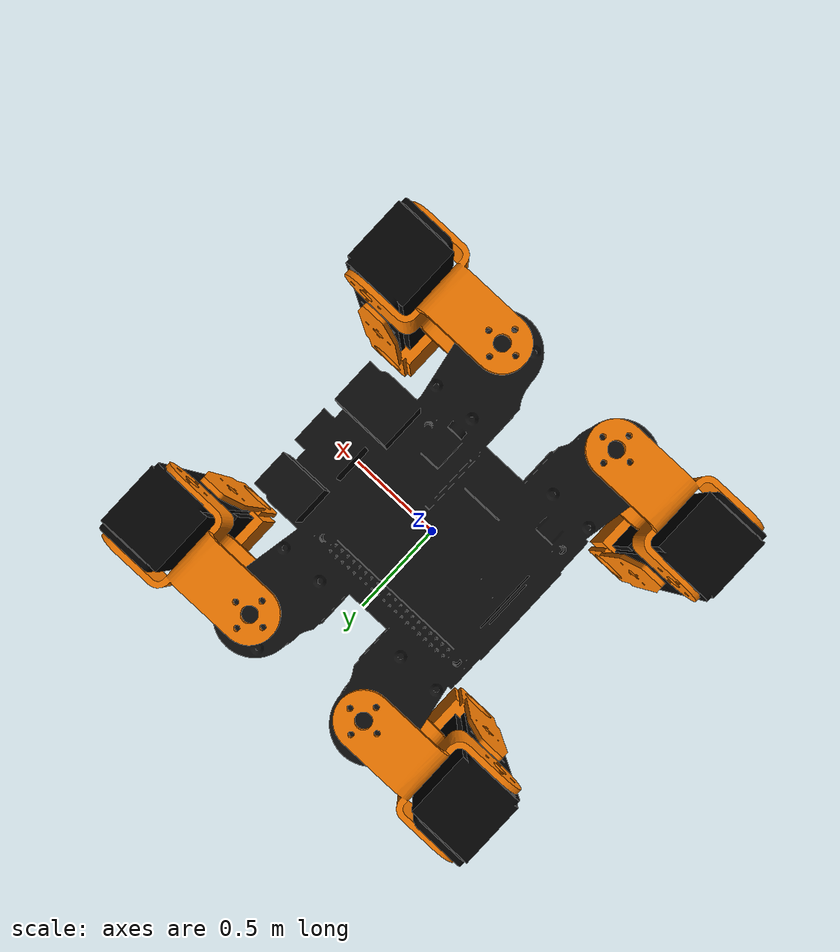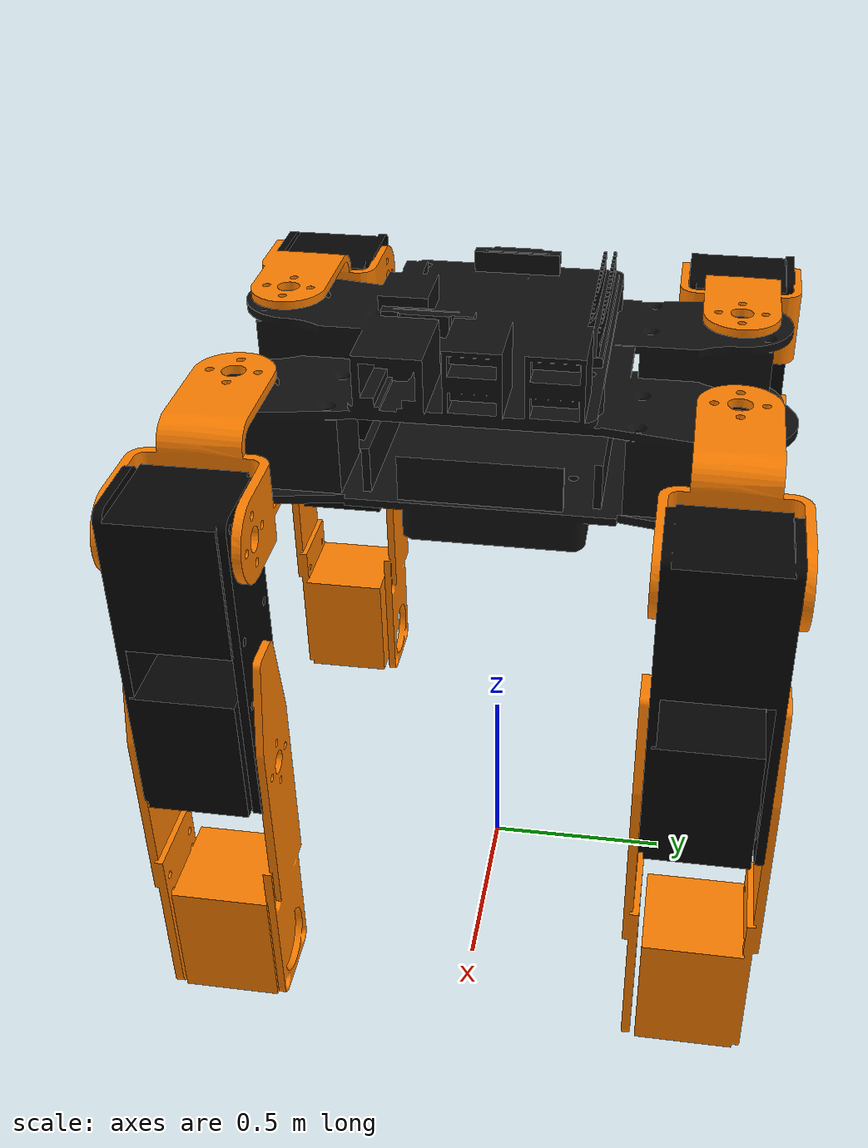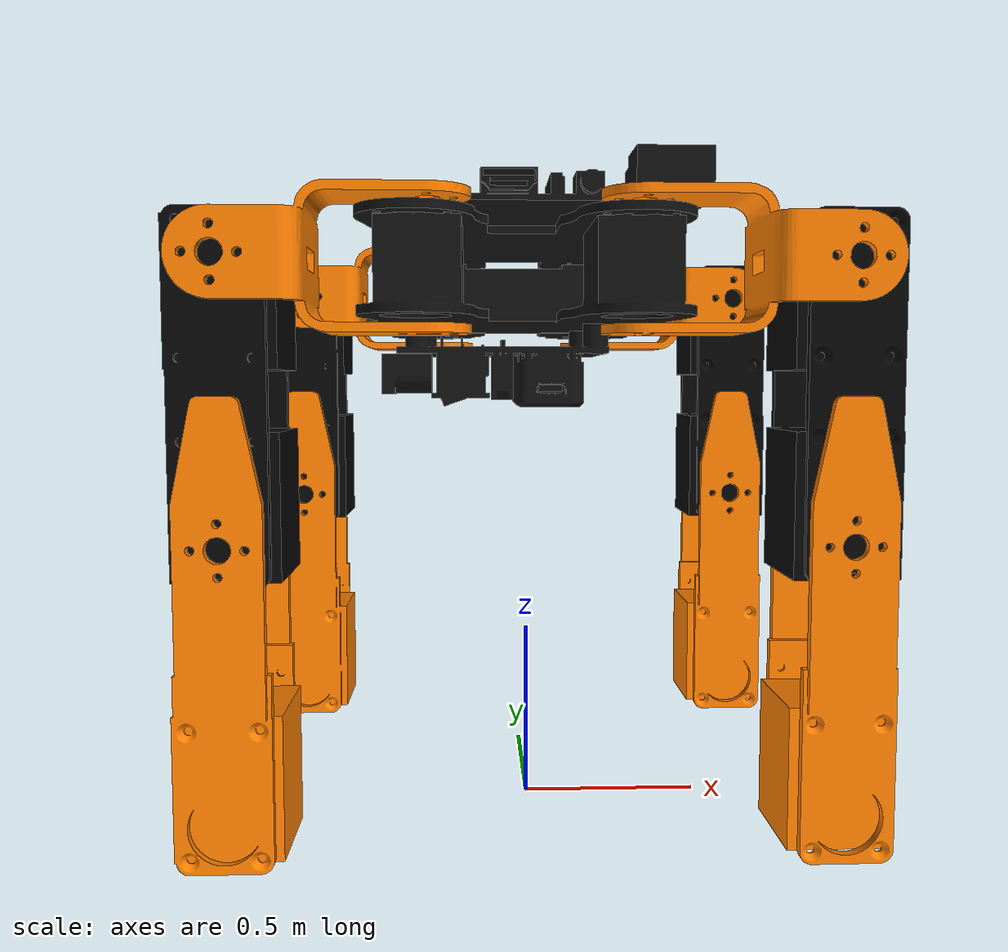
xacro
<?xml version="1.0" ?>
<robot name="ads-mt" xmlns:xacro="http://www.ros.org/wiki/xacro">

    <xacro:include filename="$(find adsmt_description)/adsmt_description/urdf/adsmt.gazebo" />

    <link name = "base_footprint">
        <!-- Nth in here -->
    </link>
    <joint name = "body_link_joint" type='fixed'>
        <origin xyz="0 0.00 1.5" rpy="0 0 0"/>
        <parent link="base_footprint"/>
        <child link="body"/>
    </joint>

    <material name="yellow">
        <color rgba="1 0.5 0 1"/>
    </material>

    <material name="black">
        <color rgba="0.02 0.02 0.02 1"/>
    </material>

    <material name="grey">
        <color rgba="0.06 0.06 0.06 1"/>
    </material>

    <!-- Base Link -->
    <link name="body">
        <visual>
            <geometry>
                <mesh filename="$(find adsmt_description)/adsmt_description/urdf/designs/body.stl" scale=" 0.01 0.01 0.01"/>
            </geometry>
            <material name='grey'/>
        </visual>
        <collision>
            <density>1060.0</density>
           <origin xyz="0 0 0"/>
           <geometry>
              <mesh filename="$(find adsmt_description)/adsmt_description/urdf/designs/body.stl" scale=" 0.01 0.01 0.01"/>
           </geometry>
        </collision>
        <inertial>
            <mass value="0.29"/>
            <origin xyz="0 0 0"/>
            <inertia ixx="0.000193" ixy="0.0" ixz="0.0" iyy="0.000694" iyz="0.0" izz="0.000529"/>
        </inertial>
    </link>

    <!-- Leg 1 -->
    <!-- Joints and Links -->
    <joint name="joint_1" type="revolute">
        <parent link="body"/>
        <child link="joint_1_link"/>
        <origin xyz="-0.255 -0.60 0.0" rpy="0 0 -1.5708"/>
        <axis xyz="0 0 1"/>
        <limit lower="-3.1415" upper="3.1415" effort="10" velocity="1.0"/>
    </joint>
    <link name="joint_1_link">
        <inertial>
            <mass value="0.018"/>
            <origin xyz="0 0 0"/>
            <inertia ixx="0.000008268" ixy="0.0" ixz="0.0" iyy="0.000008268" iyz="0.0" izz="0.000003468"/>
        </inertial>
        <visual>
            <geometry>
                <mesh filename="$(find adsmt_description)/adsmt_description/urdf/designs/double_u.stl" scale=" 0.01 0.01 0.01"/>
            </geometry>
            <material name='yellow'/>
        </visual>
        <collision>
            <geometry>
                <mesh filename="$(find adsmt_description)/adsmt_description/urdf/designs/double_u.stl" scale=" 0.01 0.01 0.01"/>

            </geometry>
        </collision>
    </link>

    <!-- Thigh 1 -->
    <joint name="joint_1_1" type="revolute">
        <parent link="joint_1_link"/>
        <child link="joint_1_thigh"/>
        <origin xyz="-0.0 -0.46 -0.0" rpy="-1.5708 0 0"/>
        <axis xyz="1 0 0"/>
        <limit lower="-3.1415" upper="3.1415" effort="10" velocity="1.0"/>
    </joint>
    <link name="joint_1_thigh">
        <inertial>
            <mass value="0.06"/>
            <origin xyz="0 0 0"/>
            <inertia ixx="0.0000193" ixy="0.0" ixz="0.0" iyy="0.0000202" iyz="0.0" izz="0.00000331"/>
        </inertial>
        <visual>

            <geometry>
                <mesh filename="$(find adsmt_description)/adsmt_description/urdf/designs/thigh.stl" scale=" 0.01 0.01 0.01"/>
            </geometry>
            <material name='black'></material>
        </visual>
        <collision>
            <origin xyz="0 0 0"/>
            <geometry>
                <mesh filename="$(find adsmt_description)/adsmt_description/urdf/designs/thigh.stl" scale=" 0.01 0.01 0.01"/>

            </geometry>
        </collision>
    </link>

    <!-- Shin 1 -->
    <joint name="joint_1_1_1" type="revolute">
        <parent link="joint_1_thigh"/>
        <child link="joint_1_shin"/>
        <origin xyz="-0.0 0.65 0.0" rpy="3.1415 0 0"/>
        <axis xyz="1 0 0"/>
        <limit lower="-3.1415" upper="3.1415" effort="10" velocity="1.0"/>
    </joint>
    <link name="joint_1_shin">
        <inertial>
            <mass value="0.06"/>
            <origin xyz="0 0 0"/>
            <inertia ixx="0.00003064" ixy="0.0" ixz="0" iyy="0.00003232" iyz="0.0" izz="0.0000041"/>

        </inertial>
        <visual>
            <geometry>
                <mesh filename="$(find adsmt_description)/adsmt_description/urdf/designs/shin.stl" scale=" 0.01 0.01 0.01"/>
            </geometry>
            <material name='yellow'></material>
        </visual>
        <collision>
            <geometry>
                <mesh filename="$(find adsmt_description)/adsmt_description/urdf/designs/shin.stl" scale=" 0.01 0.01 0.01"/>
            </geometry>
        </collision>
    </link>

    <!-- /Leg 1 -->

    <!-- Leg 2 -->
    <joint name="joint_2" type="revolute">
        <parent link="body"/>
        <child link="joint_2_link"/>
        <origin xyz="-0.255 0.6 0.0" rpy="0 0 -1.5708"/>
        <axis xyz="0 0 1"/>
        <limit lower="-3.1415" upper="3.1415" effort="10" velocity="1.0"/>
    </joint>
    <link name="joint_2_link">
        <inertial>
            <mass value="0.018"/>
            <origin xyz="0 0 0"/>
            <inertia ixx="0.000133" ixy="0.0" ixz="0.0" iyy="0.000133" iyz="0.0" izz="0.0000558"/>

        </inertial>
        <visual>
            <geometry>
                <mesh filename="$(find adsmt_description)/adsmt_description/urdf/designs/double_u.stl" scale=" 0.01 0.01 0.01"/>
            </geometry>
            <material name='yellow'/>
        </visual>

        <collision>
            <geometry>
                <mesh filename="$(find adsmt_description)/adsmt_description/urdf/designs/double_u.stl" scale=" 0.01 0.01 0.01"/>
            </geometry>
        </collision>

    </link>

    <!-- Thigh 2 -->
    <joint name="joint_2_1" type="revolute">
        <parent link="joint_2_link"/>
        <child link="joint_2_thigh"/>
        <origin xyz="-0.0 -0.46 0.0" rpy="-1.5708 0 0"/>
        <axis xyz="1 0 0"/>
        <limit lower="-3.1415" upper="3.1415" effort="10" velocity="1.0"/>
    </joint>
    <link name="joint_2_thigh">
        <inertial>
            <mass value="0.06"/>
            <origin xyz="0 0 0"/>
            <inertia ixx="0.0000193" ixy="0.0" ixz="0.0" iyy="0.0000202" iyz="0.0" izz="0.00000331"/>
        </inertial>
        <visual>
            <geometry>
                <mesh filename="$(find adsmt_description)/adsmt_description/urdf/designs/thigh.stl" scale=" 0.01 0.01 0.01"/>
            </geometry>
            <material name='black'></material>
        </visual>
        <collision>
            <geometry>
                <mesh filename="$(find adsmt_description)/adsmt_description/urdf/designs/thigh.stl" scale=" 0.01 0.01 0.01"/>
            </geometry>
        </collision>
    </link>

    <!-- Shin 2 -->
    <joint name="joint_2_1_1" type="revolute">
        <parent link="joint_2_thigh"/>
        <child link="joint_2_shin"/>
        <origin xyz="-0.0 0.65 0.0" rpy="3.1415 0 0"/>
        <axis xyz="1 0 0"/>
        <limit lower="-3.1415" upper="3.1415" effort="10" velocity="1.0"/>
    </joint>
    <link name="joint_2_shin">
        <inertial>
            <mass value="0.06"/>
            <origin xyz="0 0 0"/>
            <inertia ixx="0.00003064" ixy="0.0" ixz="0" iyy="0.00003232" iyz="0.0" izz="0.0000041"/>

        </inertial>
        <visual>
            <geometry>
                <mesh filename="$(find adsmt_description)/adsmt_description/urdf/designs/shin.stl" scale=" 0.01 0.01 0.01"/>
            </geometry>
            <material name='yellow'></material>
        </visual>
        <collision>
            <geometry>
                <mesh filename="$(find adsmt_description)/adsmt_description/urdf/designs/shin.stl" scale=" 0.01 0.01 0.01"/>
            </geometry>
        </collision>
    </link>
    <!-- /Leg 2-->

    <!-- Leg 3 -->
    <joint name="joint_3" type="revolute">
        <parent link="body"/>
        <child link="joint_3_link"/>
        <origin xyz="0.25 -0.60 -0.0" rpy="0 0 1.5708"/>
        <axis xyz="0 0 1"/>
        <limit lower="-3.1415" upper="3.1415" effort="10" velocity="1.0"/>
    </joint>
    <link name="joint_3_link">
        <inertial>
            <mass value="0.018"/>
            <origin xyz="0 0 0"/>
            <inertia ixx="0.000133" ixy="0.0" ixz="0.0" iyy="0.000133" iyz="0.0" izz="0.0000558"/>
        </inertial>
        <visual>
            <geometry>
                <mesh filename="$(find adsmt_description)/adsmt_description/urdf/designs/double_u.stl" scale=" 0.01 0.01 0.01"/>
            </geometry>
            <material name='yellow'></material>
        </visual>
        <collision>
            <geometry>
                <mesh filename="$(find adsmt_description)/adsmt_description/urdf/designs/double_u.stl" scale=" 0.01 0.01 0.01"/>
            </geometry>
        </collision>

    </link>

    <!-- Thigh 3 -->
    <joint name="joint_3_1" type="revolute">
        <parent link="joint_3_link"/>
        <child link="joint_3_thigh"/>
        <origin xyz="-0.00 -0.46 -0.00" rpy="-1.5708 0 0"/>
        <axis xyz="1 0 0"/>
        <limit lower="-3.1415" upper="3.1415" effort="10" velocity="1.0"/>
    </joint>
    <link name="joint_3_thigh">
        <inertial>
            <mass value="0.06"/>
            <origin xyz="0 0 0"/>
            <inertia ixx="0.0000193" ixy="0.0" ixz="0.0" iyy="0.0000202" iyz="0.0" izz="0.00000331"/>
        </inertial>
        <visual>
            <geometry>
                <mesh filename="$(find adsmt_description)/adsmt_description/urdf/designs/thigh.stl" scale=" 0.01 0.01 0.01"/>
            </geometry>
            <material name='black'></material>
        </visual>
        <collision>
            <geometry>
                <mesh filename="$(find adsmt_description)/adsmt_description/urdf/designs/thigh.stl" scale=" 0.01 0.01 0.01"/>
            </geometry>
        </collision>
    </link>

    <!-- Shin 3 -->
    <joint name="joint_3_1_1" type="revolute">
        <parent link="joint_3_thigh"/>
        <child link="joint_3_shin"/>
        <origin xyz="-0.0 0.65 -0.00" rpy="3.1415 0 0"/>
        <axis xyz="1 0 0"/>
        <limit lower="-3.1415" upper="3.1415" effort="10" velocity="1.0"/>
    </joint>
    <link name="joint_3_shin">
        <inertial>
            <mass value="0.06"/>
            <origin xyz="0 0 0"/>
            <inertia ixx="0.00003064" ixy="0.0" ixz="0" iyy="0.00003232" iyz="0.0" izz="0.0000041"/>
        </inertial>
        <visual>
            <geometry>
                <mesh filename="$(find adsmt_description)/adsmt_description/urdf/designs/shin.stl" scale=" 0.01 0.01 0.01"/>
            </geometry>
            <material name='yellow'></material>
        </visual>
        <collision>
            <geometry>
                <mesh filename="$(find adsmt_description)/adsmt_description/urdf/designs/shin.stl" scale=" 0.01 0.01 0.01"/>
            </geometry>
        </collision>
    </link>
    <!-- /Leg 3-->

    <!-- Leg 4 -->
    <joint name="joint_4" type="revolute">
        <parent link="body"/>
        <child link="joint_4_link"/>
        <origin xyz="0.250 0.6 0.0" rpy="0 0 1.5708"/>
        <axis xyz="0 0 1"/>
        <limit lower="-3.1415" upper="3.1415" effort="10" velocity="1.0"/>
    </joint>
    <link name="joint_4_link">
        <inertial>
            <mass value="0.018"/>
            <origin xyz="0 0 0"/>
            <inertia ixx="0.000133" ixy="0.0" ixz="0.0" iyy="0.000133" iyz="0.0" izz="0.0000558"/>
        </inertial>
        <visual>
            <geometry>
                <mesh filename="$(find adsmt_description)/adsmt_description/urdf/designs/double_u.stl" scale=" 0.01 0.01 0.01"/>
            </geometry>
            <material name='yellow'></material>
        </visual>
        <collision>
            <geometry>
                <mesh filename="$(find adsmt_description)/adsmt_description/urdf/designs/double_u.stl" scale=" 0.01 0.01 0.01"/>
            </geometry>
        </collision>
    </link>

    <!-- Thigh 4 -->
    <joint name="joint_4_1" type="revolute">
        <parent link="joint_4_link"/>
        <child link="joint_4_thigh"/>
        <origin xyz="-0.0 -0.46 0.0" rpy="-1.5708 0 0"/>
        <axis xyz="1 0 0"/>
        <limit lower="-3.1415" upper="3.1415" effort="10" velocity="1.0"/>
    </joint>
    <link name="joint_4_thigh">
        <inertial>
            <mass value="0.06"/>
            <origin xyz="0 0 0"/>
            <inertia ixx="0.0000193" ixy="0.0" ixz="0.0" iyy="0.0000202" iyz="0.0" izz="0.00000331"/>
        </inertial>
        <visual>
            <geometry>
                <mesh filename="$(find adsmt_description)/adsmt_description/urdf/designs/thigh.stl" scale=" 0.01 0.01 0.01"/>
            </geometry>
            <material name='black'></material>
        </visual>
        <collision>
            <geometry>
                <mesh filename="$(find adsmt_description)/adsmt_description/urdf/designs/thigh.stl" scale=" 0.01 0.01 0.01"/>
            </geometry>
        </collision>
    </link>

    <!-- Shin 4 -->
    <joint name="joint_4_1_1" type="revolute">
        <parent link="joint_4_thigh"/>
        <child link="joint_4_shin"/>
        <origin xyz="-0.0 0.65 0.0" rpy="3.1415 0 0"/>
        <axis xyz="1 0 0"/>
        <limit lower="-3.1415" upper="3.1415" effort="10" velocity="1.0"/>
    </joint>
    <link name="joint_4_shin">
        <inertial>
            <mass value="0.06"/>
            <origin xyz="0 0 0"/>
            <inertia ixx="0.00003064" ixy="0.0" ixz="0" iyy="0.00003232" iyz="0.0" izz="0.0000041"/>
        </inertial>
        <visual>
            <geometry>
                <mesh filename="$(find adsmt_description)/adsmt_description/urdf/designs/shin.stl" scale=" 0.01 0.01 0.01"/>
            </geometry>
            <material name='yellow'></material>
        </visual>
        <collision>
            <geometry>
                <mesh filename="$(find adsmt_description)/adsmt_description/urdf/designs/shin.stl" scale=" 0.01 0.01 0.01"/>
            </geometry>
        </collision>
    </link>
    <!-- /Leg 4 -->
</robot>
